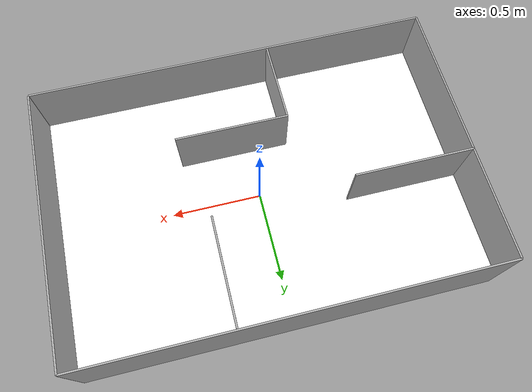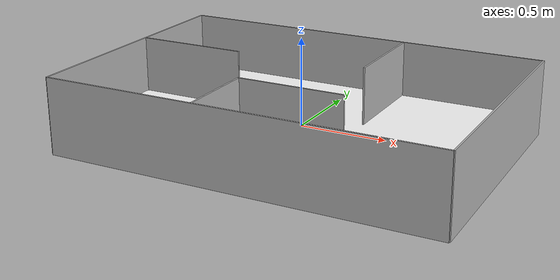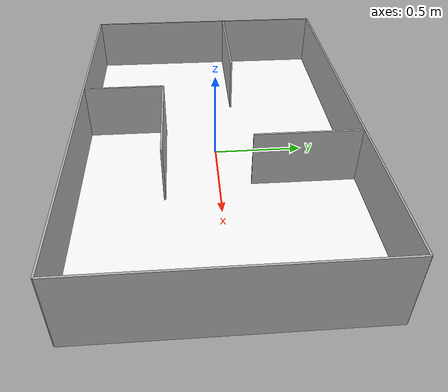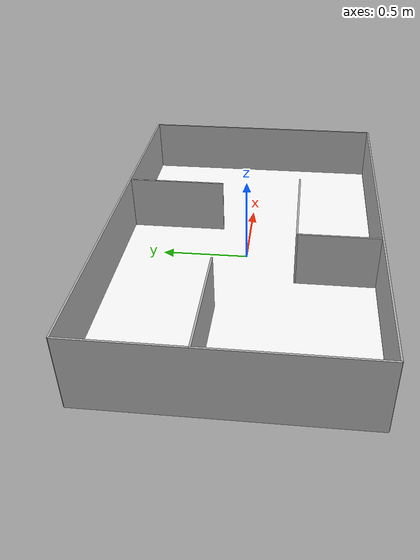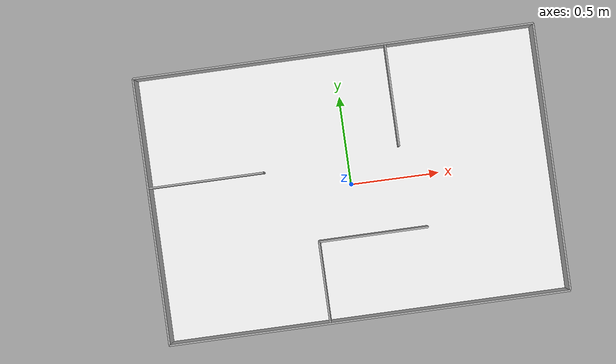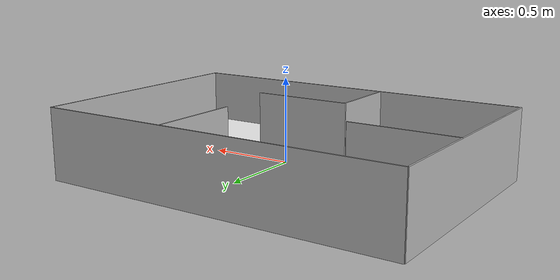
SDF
<sdf version="1.8">
 <world name="pinky_factory">
  <physics name="1ms" type="ignored">
   <max_step_size>0.001</max_step_size>
   <real_time_factor>1.0</real_time_factor>
  </physics>
  <plugin filename="gz-sim-physics-system" name="gz::sim::systems::Physics"/>
  <plugin filename="gz-sim-sensors-system" name="gz::sim::systems::Sensors">
   <render_engine>ogre2</render_engine>
  </plugin>
  <plugin filename="gz-sim-user-commands-system" name="gz::sim::systems::UserCommands"/>
  <plugin filename="gz-sim-scene-broadcaster-system" name="gz::sim::systems::SceneBroadcaster"/>
  <plugin filename="gz-sim-imu-system" name="gz::sim::systems::Imu"/>
  <light type="directional" name="sun">
   <cast_shadows>false</cast_shadows>
   <pose>0 0 2 0 0 0</pose>
   <diffuse>1 1 1 1</diffuse>
   <specular>1 1 1 1</specular>
   <attenuation><range>1000</range><constant>1</constant><linear>0</linear><quadratic>0</quadratic></attenuation>
   <direction>0 0 -1</direction>
  </light>
  <model name="logo">
   <static>true</static>
   <link name="logo_link">
    <visual name="logo_visual">
     <geometry><plane><normal>0 0 1</normal><size>2.25 1.5</size></plane></geometry>
     <material>
      <diffuse>1 1 1 1</diffuse>
      <specular>0.6 0.6 0.6 1</specular>
      <pbr><metal><albedo_map><albedo_map>file://__TWIN_FLOOR__</albedo_map></albedo_map></metal></pbr>
     </material>
    </visual>
    <collision name="logo_collision">
     <geometry><plane><normal>0 0 1</normal><size>2.25 1.5</size></plane></geometry>
     <surface><contact><collide_without_contact>true</collide_without_contact></contact></surface>
    </collision>
   </link>
  </model>
  <model name="wall_front">
   <static>true</static>
   <pose>0 0.75 0.11 0 0 0</pose>
   <link name="wall_link_front">
    <visual name="wall_visual_front">
     <geometry><box><size>2.25 0.01 0.44</size></box></geometry>
     <material><diffuse>0.7 0.7 0.7 1</diffuse><specular>0.2 0.2 0.2 1</specular></material>
    </visual>
    <collision name="wall_collision_front"><geometry><box><size>2.25 0.01 0.44</size></box></geometry></collision>
   </link>
  </model>
  <model name="wall_back">
   <static>true</static>
   <pose>0 -0.75 0.11 0 0 3.14</pose>
   <link name="wall_link_back">
    <visual name="wall_visual_back">
     <geometry><box><size>2.25 0.01 0.44</size></box></geometry>
     <material><diffuse>0.7 0.7 0.7 1</diffuse><specular>0.2 0.2 0.2 1</specular></material>
    </visual>
    <collision name="wall_collision_back"><geometry><box><size>2.25 0.01 0.44</size></box></geometry></collision>
   </link>
  </model>
  <model name="wall_left">
   <static>true</static>
   <pose>-1.125 0 0.11 0 0 1.57</pose>
   <link name="wall_link_left">
    <visual name="wall_visual_left">
     <geometry><box><size>1.5 0.01 0.44</size></box></geometry>
     <material><diffuse>0.7 0.7 0.7 1</diffuse><specular>0.2 0.2 0.2 1</specular></material>
    </visual>
    <collision name="wall_collision_left"><geometry><box><size>1.5 0.01 0.44</size></box></geometry></collision>
   </link>
  </model>
  <model name="wall_right">
   <static>true</static>
   <pose>1.125 0 0.11 0 0 -1.57</pose>
   <link name="wall_link_right">
    <visual name="wall_visual_right">
     <geometry><box><size>1.5 0.01 0.44</size></box></geometry>
     <material><diffuse>0.7 0.7 0.7 1</diffuse><specular>0.2 0.2 0.2 1</specular></material>
    </visual>
    <collision name="wall_collision_right"><geometry><box><size>1.5 0.01 0.44</size></box></geometry></collision>
   </link>
  </model>
  <model name="wall_57">
   <static>true</static>
   <pose>0.2919 0.4589 0.11 0 0 -1.57</pose>
   <link name="wall_link_right">
    <visual name="wall_visual_right">
     <geometry><box><size>0.57 0.01 0.44</size></box></geometry>
     <material><diffuse>0.7 0.7 0.7 1</diffuse><specular>0.2 0.2 0.2 1</specular></material>
    </visual>
    <collision name="wall_collision_right"><geometry><box><size>0.57 0.01 0.44</size></box></geometry></collision>
   </link>
  </model>
  <model name="wall_45">
   <static>true</static>
   <pose>-0.2228 -0.5188 0.11 0 0 -1.57</pose>
   <link name="wall_link_right">
    <visual name="wall_visual_right">
     <geometry><box><size>0.45 0.01 0.44</size></box></geometry>
     <material><diffuse>0.7 0.7 0.7 1</diffuse><specular>0.2 0.2 0.2 1</specular></material>
    </visual>
    <collision name="wall_collision_right"><geometry><box><size>0.45 0.01 0.44</size></box></geometry></collision>
   </link>
  </model>
  <model name="wall_62">
   <static>true</static>
   <pose>0.0820 -0.2922 0.11 0 0 3.14</pose>
   <link name="wall_link_back">
    <visual name="wall_visual_back">
     <geometry><box><size>0.62 0.01 0.44</size></box></geometry>
     <material><diffuse>0.7 0.7 0.7 1</diffuse><specular>0.2 0.2 0.2 1</specular></material>
    </visual>
    <collision name="wall_collision_back"><geometry><box><size>0.62 0.01 0.44</size></box></geometry></collision>
   </link>
  </model>
  <model name="wall_65">
   <static>true</static>
   <pose>-0.8004 0.1332 0.11 0 0 3.14</pose>
   <link name="wall_link_back">
    <visual name="wall_visual_back">
     <geometry><box><size>0.65 0.01 0.44</size></box></geometry>
     <material><diffuse>0.7 0.7 0.7 1</diffuse><specular>0.2 0.2 0.2 1</specular></material>
    </visual>
    <collision name="wall_collision_back"><geometry><box><size>0.65 0.01 0.44</size></box></geometry></collision>
   </link>
  </model>
  <model name="camera">
   <static>true</static>
   <pose>0 0 1.6 0 1.57 1.57</pose>
   <link name="link">
    <inertial>
     <mass>0.1</mass>
     <inertia><ixx>0.000166667</ixx><iyy>0.000166667</iyy><izz>0.000166667</izz></inertia>
    </inertial>
    <collision name="collision"><geometry><box><size>0.1 0.1 0.1</size></box></geometry></collision>
    <sensor name="camera" type="camera">
     <camera>
      <horizontal_fov>1.52</horizontal_fov>
      <image><width>640</width><height>480</height></image>
      <clip><near>0.1</near><far>100</far></clip>
     </camera>
     <always_on>1</always_on>
     <update_rate>30</update_rate>
     <visualize>true</visualize>
     <topic>camera</topic>
    </sensor>
   </link>
  </model>
 </world>
</sdf>
